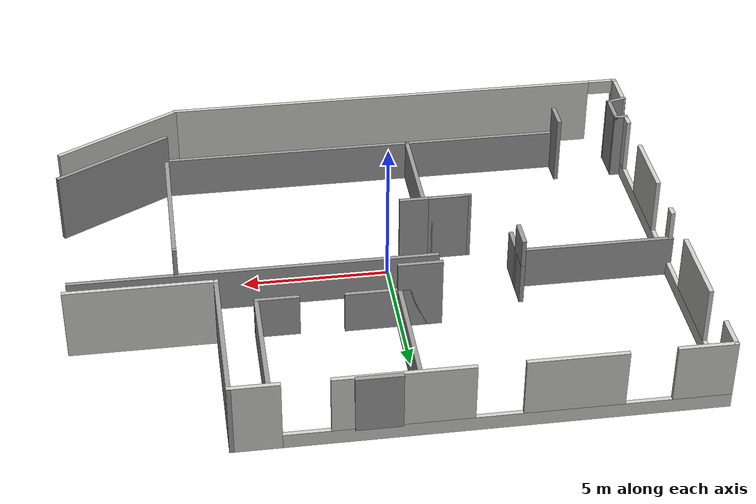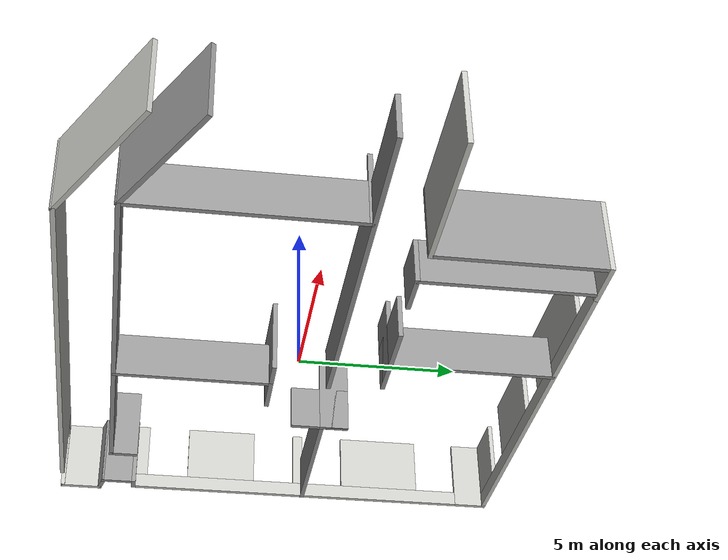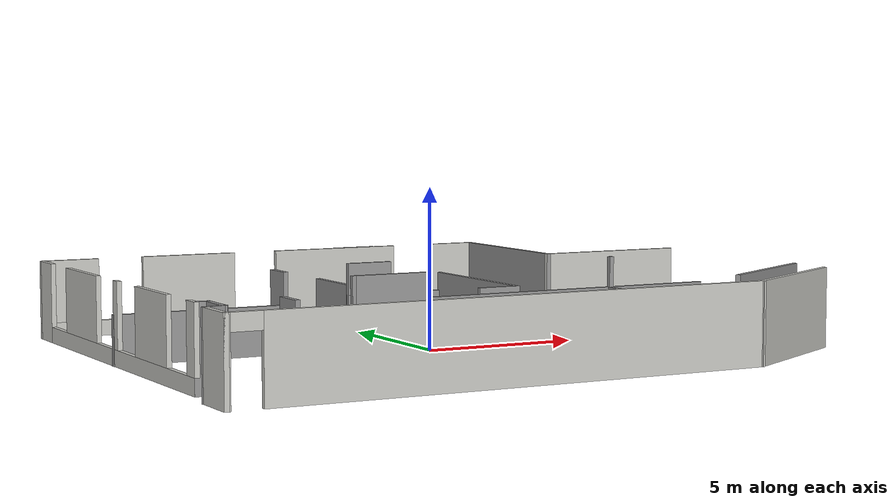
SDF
<?xml version='1.0'?>
<sdf version='1.6'>
  <model name='myoffice2f'>
    <pose frame=''>0.632019 0.350636 0 0 -0 0</pose>
    <link name='Wall_0'>
      <collision name='Wall_0_Collision'>
        <geometry>
          <box>
            <size>5 0.15 2.5</size>
          </box>
        </geometry>
        <pose frame=''>0 0 1.25 0 -0 0</pose>
      </collision>
      <visual name='Wall_0_Visual'>
        <pose frame=''>0 0 1.25 0 -0 0</pose>
        <geometry>
          <box>
            <size>5 0.15 2.5</size>
          </box>
        </geometry>
        <material>
          <script>
            <uri>file://media/materials/scripts/gazebo.material</uri>
            <name>Gazebo/CeilingTiled</name>
          </script>
          <ambient>1 1 1 1</ambient>
        </material>
        <meta>
          <layer>0</layer>
        </meta>
      </visual>
      <pose frame=''>7.82859 2.64137 0 0 -0 3.14159</pose>
    </link>
    <link name='Wall_1'>
      <collision name='Wall_1_Collision'>
        <geometry>
          <box>
            <size>5.5 0.15 2.5</size>
          </box>
        </geometry>
        <pose frame=''>0 0 1.25 0 -0 0</pose>
      </collision>
      <visual name='Wall_1_Visual'>
        <pose frame=''>0 0 1.25 0 -0 0</pose>
        <geometry>
          <box>
            <size>5.5 0.15 2.5</size>
          </box>
        </geometry>
        <material>
          <script>
            <uri>file://media/materials/scripts/gazebo.material</uri>
            <name>Gazebo/Grey</name>
          </script>
          <ambient>1 1 1 1</ambient>
        </material>
        <meta>
          <layer>0</layer>
        </meta>
      </visual>
      <pose frame=''>5.40359 5.31637 0 0 -0 1.5708</pose>
    </link>
    <link name='Wall_11'>
      <collision name='Wall_11_Collision'>
        <geometry>
          <box>
            <size>4.5 0.15 2.5</size>
          </box>
        </geometry>
        <pose frame=''>0 0 1.25 0 -0 0</pose>
      </collision>
      <visual name='Wall_11_Visual'>
        <pose frame=''>0 0 1.25 0 -0 0</pose>
        <geometry>
          <box>
            <size>4.5 0.15 2.5</size>
          </box>
        </geometry>
        <material>
          <script>
            <uri>file://media/materials/scripts/gazebo.material</uri>
            <name>Gazebo/Grey</name>
          </script>
          <ambient>0.533333 0.541176 0.521569 1</ambient>
        </material>
        <meta>
          <layer>0</layer>
        </meta>
      </visual>
      <pose frame=''>8.5317 -5.12122 0 0 -0 -2.61805</pose>
    </link>
    <link name='Wall_12'>
      <collision name='Wall_12_Collision'>
        <geometry>
          <box>
            <size>14.5 0.15 1.5</size>
          </box>
        </geometry>
        <pose frame=''>0 0 0.75 0 -0 0</pose>
      </collision>
      <visual name='Wall_12_Visual'>
        <pose frame=''>0 0 0.75 0 -0 0</pose>
        <geometry>
          <box>
            <size>14.5 0.15 1.5</size>
          </box>
        </geometry>
        <material>
          <script>
            <uri>file://media/materials/scripts/gazebo.material</uri>
            <name>Gazebo/Grey</name>
          </script>
          <ambient>0.533333 0.541176 0.521569 1</ambient>
        </material>
        <meta>
          <layer>0</layer>
        </meta>
      </visual>
      <pose frame=''>-0.527019 -6.20864 0 0 -0 3.14159</pose>
    </link>
    <link name='Wall_13'>
      <collision name='Wall_13_Collision'>
        <geometry>
          <box>
            <size>1 0.15 2.5</size>
          </box>
        </geometry>
        <pose frame=''>0 0 1.25 0 -0 0</pose>
      </collision>
      <visual name='Wall_13_Visual'>
        <pose frame=''>0 0 1.25 0 -0 0</pose>
        <geometry>
          <box>
            <size>1 0.15 2.5</size>
          </box>
        </geometry>
        <material>
          <script>
            <uri>file://media/materials/scripts/gazebo.material</uri>
            <name>Gazebo/Grey</name>
          </script>
          <ambient>1 1 1 1</ambient>
        </material>
        <meta>
          <layer>0</layer>
        </meta>
      </visual>
      <pose frame=''>-7.70191 -5.78372 0 0 -0 1.57053</pose>
    </link>
    <link name='Wall_15'>
      <collision name='Wall_15_Collision'>
        <geometry>
          <box>
            <size>12.5 0.15 1.5</size>
          </box>
        </geometry>
        <pose frame=''>0 0 0.75 0 -0 0</pose>
      </collision>
      <visual name='Wall_15_Visual'>
        <pose frame=''>0 0 0.75 0 -0 0</pose>
        <geometry>
          <box>
            <size>12.5 0.15 1.5</size>
          </box>
        </geometry>
        <material>
          <script>
            <uri>file://media/materials/scripts/gazebo.material</uri>
            <name>Gazebo/Grey</name>
          </script>
          <ambient>0.533333 0.541176 0.521569 1</ambient>
        </material>
        <meta>
          <layer>0</layer>
        </meta>
      </visual>
      <pose frame=''>4.03798 0.821365 0 0 -0 3.14159</pose>
    </link>
    <link name='Wall_19'>
      <collision name='Wall_19_Collision'>
        <geometry>
          <box>
            <size>7.1 0.15 1.5</size>
          </box>
        </geometry>
        <pose frame=''>0 0 0.75 0 -0 0</pose>
      </collision>
      <visual name='Wall_19_Visual'>
        <pose frame=''>0 0 0.75 0 -0 0</pose>
        <geometry>
          <box>
            <size>7.1 0.15 1.5</size>
          </box>
        </geometry>
        <material>
          <script>
            <uri>file://media/materials/scripts/gazebo.material</uri>
            <name>Gazebo/Grey</name>
          </script>
          <ambient>0.533333 0.541176 0.521569 1</ambient>
        </material>
        <meta>
          <layer>0</layer>
        </meta>
      </visual>
      <pose frame=''>6.64798 -2.73364 0 0 -0 1.5708</pose>
    </link>
    <link name='Wall_2'>
      <pose frame=''>-2.39641 7.99137 0 0 -0 3.14159</pose>
      <visual name='Wall_2_Visual_0'>
        <pose frame=''>-7.0543 0 1.25 0 -0 0</pose>
        <geometry>
          <box>
            <size>1.64141 0.15 2.5</size>
          </box>
        </geometry>
        <material>
          <script>
            <uri>file://media/materials/scripts/gazebo.material</uri>
            <name>Gazebo/CeilingTiled</name>
          </script>
          <ambient>1 1 1 1</ambient>
        </material>
        <meta>
          <layer>0</layer>
        </meta>
      </visual>
      <collision name='Wall_2_Collision_0'>
        <geometry>
          <box>
            <size>1.64141 0.15 2.5</size>
          </box>
        </geometry>
        <pose frame=''>-7.0543 0 1.25 0 -0 0</pose>
      </collision>
      <visual name='Wall_2_Visual_1'>
        <pose frame=''>0.820704 0 0.25 0 -0 0</pose>
        <geometry>
          <box>
            <size>14.1086 0.15 0.5</size>
          </box>
        </geometry>
        <material>
          <script>
            <uri>file://media/materials/scripts/gazebo.material</uri>
            <name>Gazebo/CeilingTiled</name>
          </script>
          <ambient>1 1 1 1</ambient>
        </material>
        <meta>
          <layer>0</layer>
        </meta>
      </visual>
      <collision name='Wall_2_Collision_1'>
        <geometry>
          <box>
            <size>14.1086 0.15 0.5</size>
          </box>
        </geometry>
        <pose frame=''>0.820704 0 0.25 0 -0 0</pose>
      </collision>
      <visual name='Wall_2_Visual_2'>
        <pose frame=''>-2.49734 0 1.5 0 -0 0</pose>
        <geometry>
          <box>
            <size>4.4725 0.15 2</size>
          </box>
        </geometry>
        <material>
          <script>
            <uri>file://media/materials/scripts/gazebo.material</uri>
            <name>Gazebo/CeilingTiled</name>
          </script>
          <ambient>1 1 1 1</ambient>
        </material>
        <meta>
          <layer>0</layer>
        </meta>
      </visual>
      <collision name='Wall_2_Collision_2'>
        <geometry>
          <box>
            <size>4.4725 0.15 2</size>
          </box>
        </geometry>
        <pose frame=''>-2.49734 0 1.5 0 -0 0</pose>
      </collision>
      <visual name='Wall_2_Visual_3'>
        <pose frame=''>2.84966 0 1.5 0 -0 0</pose>
        <geometry>
          <box>
            <size>3.22151 0.15 2</size>
          </box>
        </geometry>
        <material>
          <script>
            <uri>file://media/materials/scripts/gazebo.material</uri>
            <name>Gazebo/CeilingTiled</name>
          </script>
          <ambient>1 1 1 1</ambient>
        </material>
        <meta>
          <layer>0</layer>
        </meta>
      </visual>
      <collision name='Wall_2_Collision_3'>
        <geometry>
          <box>
            <size>3.22151 0.15 2</size>
          </box>
        </geometry>
        <pose frame=''>2.84966 0 1.5 0 -0 0</pose>
      </collision>
      <visual name='Wall_2_Visual_4'>
        <pose frame=''>6.91771 0 1.5 0 -0 0</pose>
        <geometry>
          <box>
            <size>1.91459 0.15 2</size>
          </box>
        </geometry>
        <material>
          <script>
            <uri>file://media/materials/scripts/gazebo.material</uri>
            <name>Gazebo/CeilingTiled</name>
          </script>
          <ambient>1 1 1 1</ambient>
        </material>
        <meta>
          <layer>0</layer>
        </meta>
      </visual>
      <collision name='Wall_2_Collision_4'>
        <geometry>
          <box>
            <size>1.91459 0.15 2</size>
          </box>
        </geometry>
        <pose frame=''>6.91771 0 1.5 0 -0 0</pose>
      </collision>
    </link>
    <link name='Wall_20'>
      <collision name='Wall_20_Collision'>
        <geometry>
          <box>
            <size>0.15 0.15 2.5</size>
          </box>
        </geometry>
        <pose frame=''>0 0 1.25 0 -0 0</pose>
      </collision>
      <visual name='Wall_20_Visual'>
        <pose frame=''>0 0 1.25 0 -0 0</pose>
        <geometry>
          <box>
            <size>0.15 0.15 2.5</size>
          </box>
        </geometry>
        <material>
          <script>
            <uri>file://media/materials/scripts/gazebo.material</uri>
            <name>Gazebo/Grey</name>
          </script>
          <ambient>1 1 1 1</ambient>
        </material>
        <meta>
          <layer>0</layer>
        </meta>
      </visual>
      <pose frame=''>6.64798 0.741364 0 0 -0 0</pose>
    </link>
    <link name='Wall_22'>
      <collision name='Wall_22_Collision'>
        <geometry>
          <box>
            <size>5.5 0.15 1.5</size>
          </box>
        </geometry>
        <pose frame=''>0 0 0.75 0 -0 0</pose>
      </collision>
      <visual name='Wall_22_Visual'>
        <pose frame=''>0 0 0.75 0 -0 0</pose>
        <geometry>
          <box>
            <size>5.5 0.15 1.5</size>
          </box>
        </geometry>
        <material>
          <script>
            <uri>file://media/materials/scripts/gazebo.material</uri>
            <name>Gazebo/Grey</name>
          </script>
          <ambient>0.533333 0.541176 0.521569 1</ambient>
        </material>
        <meta>
          <layer>0</layer>
        </meta>
      </visual>
      <pose frame=''>-7.54202 0.982364 0 0 -0 0</pose>
    </link>
    <link name='Wall_23'>
      <collision name='Wall_23_Collision'>
        <geometry>
          <box>
            <size>1 0.15 2.5</size>
          </box>
        </geometry>
        <pose frame=''>0 0 1.25 0 -0 0</pose>
      </collision>
      <visual name='Wall_23_Visual'>
        <pose frame=''>0 0 1.25 0 -0 0</pose>
        <geometry>
          <box>
            <size>1 0.15 2.5</size>
          </box>
        </geometry>
        <material>
          <script>
            <uri>file://media/materials/scripts/gazebo.material</uri>
            <name>Gazebo/Grey</name>
          </script>
          <ambient>0.533333 0.541176 0.521569 1</ambient>
        </material>
        <meta>
          <layer>0</layer>
        </meta>
      </visual>
      <pose frame=''>-4.86702 1.40736 0 0 -0 1.5708</pose>
    </link>
    <link name='Wall_24'>
      <collision name='Wall_24_Collision'>
        <geometry>
          <box>
            <size>2 0.15 1.5</size>
          </box>
        </geometry>
        <pose frame=''>0 0 0.75 0 -0 0</pose>
      </collision>
      <visual name='Wall_24_Visual'>
        <pose frame=''>0 0 0.75 0 -0 0</pose>
        <geometry>
          <box>
            <size>2 0.15 1.5</size>
          </box>
        </geometry>
        <material>
          <script>
            <uri>file://media/materials/scripts/gazebo.material</uri>
            <name>Gazebo/Grey</name>
          </script>
          <ambient>0.533333 0.541176 0.521569 1</ambient>
        </material>
        <meta>
          <layer>0</layer>
        </meta>
      </visual>
      <pose frame=''>-4.86702 0.907364 0 0 -0 -1.5708</pose>
    </link>
    <link name='Wall_26'>
      <collision name='Wall_26_Collision'>
        <geometry>
          <box>
            <size>5.25 0.15 1.5</size>
          </box>
        </geometry>
        <pose frame=''>0 0 0.75 0 -0 0</pose>
      </collision>
      <visual name='Wall_26_Visual'>
        <pose frame=''>0 0 0.75 0 -0 0</pose>
        <geometry>
          <box>
            <size>5.25 0.15 1.5</size>
          </box>
        </geometry>
        <material>
          <script>
            <uri>file://media/materials/scripts/gazebo.material</uri>
            <name>Gazebo/Grey</name>
          </script>
          <ambient>0.533333 0.541176 0.521569 1</ambient>
        </material>
        <meta>
          <layer>0</layer>
        </meta>
      </visual>
      <pose frame=''>-2.20702 -3.62764 0 0 -0 1.5708</pose>
    </link>
    <link name='Wall_27'>
      <collision name='Wall_27_Collision'>
        <geometry>
          <box>
            <size>1.5 0.15 2.5</size>
          </box>
        </geometry>
        <pose frame=''>0 0 1.25 0 -0 0</pose>
      </collision>
      <visual name='Wall_27_Visual'>
        <pose frame=''>0 0 1.25 0 -0 0</pose>
        <geometry>
          <box>
            <size>1.5 0.15 2.5</size>
          </box>
        </geometry>
        <material>
          <script>
            <uri>file://media/materials/scripts/gazebo.material</uri>
            <name>Gazebo/Grey</name>
          </script>
          <ambient>0.533333 0.541176 0.521569 1</ambient>
        </material>
        <meta>
          <layer>0</layer>
        </meta>
      </visual>
      <pose frame=''>-2.88187 -1.07779 0 0 -0 -3.14136</pose>
    </link>
    <link name='Wall_28'>
      <collision name='Wall_28_Collision'>
        <geometry>
          <box>
            <size>2.5 0.15 2.5</size>
          </box>
        </geometry>
        <pose frame=''>0 0 1.25 0 -0 0</pose>
      </collision>
      <visual name='Wall_28_Visual'>
        <pose frame=''>0 0 1.25 0 -0 0</pose>
        <geometry>
          <box>
            <size>2.5 0.15 2.5</size>
          </box>
        </geometry>
        <material>
          <script>
            <uri>file://media/materials/scripts/gazebo.material</uri>
            <name>Gazebo/Grey</name>
          </script>
          <ambient>0.533333 0.541176 0.521569 1</ambient>
        </material>
        <meta>
          <layer>0</layer>
        </meta>
      </visual>
      <pose frame=''>-2.38172 -1.07794 0 0 -0 0</pose>
    </link>
    <link name='Wall_3'>
      <pose frame=''>-10.1964 1.31637 0 0 -0 -1.5708</pose>
      <visual name='Wall_3_Visual_0'>
        <pose frame=''>-6.15767 0 1.25 0 -0 0</pose>
        <geometry>
          <box>
            <size>1.18465 0.15 2.5</size>
          </box>
        </geometry>
        <material>
          <script>
            <uri>file://media/materials/scripts/gazebo.material</uri>
            <name>Gazebo/CeilingTiled</name>
          </script>
          <ambient>1 1 1 1</ambient>
        </material>
        <meta>
          <layer>0</layer>
        </meta>
      </visual>
      <collision name='Wall_3_Collision_0'>
        <geometry>
          <box>
            <size>1.18465 0.15 2.5</size>
          </box>
        </geometry>
        <pose frame=''>-6.15767 0 1.25 0 -0 0</pose>
      </collision>
      <visual name='Wall_3_Visual_1'>
        <pose frame=''>0.592326 0 0.25 0 -0 0</pose>
        <geometry>
          <box>
            <size>12.3153 0.15 0.5</size>
          </box>
        </geometry>
        <material>
          <script>
            <uri>file://media/materials/scripts/gazebo.material</uri>
            <name>Gazebo/CeilingTiled</name>
          </script>
          <ambient>1 1 1 1</ambient>
        </material>
        <meta>
          <layer>0</layer>
        </meta>
      </visual>
      <collision name='Wall_3_Collision_1'>
        <geometry>
          <box>
            <size>12.3153 0.15 0.5</size>
          </box>
        </geometry>
        <pose frame=''>0.592326 0 0.25 0 -0 0</pose>
      </collision>
      <visual name='Wall_3_Visual_2'>
        <pose frame=''>-2.61601 0 1.5 0 -0 0</pose>
        <geometry>
          <box>
            <size>2.89867 0.15 2</size>
          </box>
        </geometry>
        <material>
          <script>
            <uri>file://media/materials/scripts/gazebo.material</uri>
            <name>Gazebo/CeilingTiled</name>
          </script>
          <ambient>1 1 1 1</ambient>
        </material>
        <meta>
          <layer>0</layer>
        </meta>
      </visual>
      <collision name='Wall_3_Collision_2'>
        <geometry>
          <box>
            <size>2.89867 0.15 2</size>
          </box>
        </geometry>
        <pose frame=''>-2.61601 0 1.5 0 -0 0</pose>
      </collision>
      <visual name='Wall_3_Visual_3'>
        <pose frame=''>0.511478 0 1.5 0 -0 0</pose>
        <geometry>
          <box>
            <size>0.356318 0.15 2</size>
          </box>
        </geometry>
        <material>
          <script>
            <uri>file://media/materials/scripts/gazebo.material</uri>
            <name>Gazebo/CeilingTiled</name>
          </script>
          <ambient>1 1 1 1</ambient>
        </material>
        <meta>
          <layer>0</layer>
        </meta>
      </visual>
      <collision name='Wall_3_Collision_3'>
        <geometry>
          <box>
            <size>0.356318 0.15 2</size>
          </box>
        </geometry>
        <pose frame=''>0.511478 0 1.5 0 -0 0</pose>
      </collision>
      <visual name='Wall_3_Visual_4'>
        <pose frame=''>3.4372 0 1.5 0 -0 0</pose>
        <geometry>
          <box>
            <size>2.49512 0.15 2</size>
          </box>
        </geometry>
        <material>
          <script>
            <uri>file://media/materials/scripts/gazebo.material</uri>
            <name>Gazebo/CeilingTiled</name>
          </script>
          <ambient>1 1 1 1</ambient>
        </material>
        <meta>
          <layer>0</layer>
        </meta>
      </visual>
      <collision name='Wall_3_Collision_4'>
        <geometry>
          <box>
            <size>2.49512 0.15 2</size>
          </box>
        </geometry>
        <pose frame=''>3.4372 0 1.5 0 -0 0</pose>
      </collision>
      <visual name='Wall_3_Visual_5'>
        <pose frame=''>6.46738 0 1.5 0 -0 0</pose>
        <geometry>
          <box>
            <size>0.565244 0.15 2</size>
          </box>
        </geometry>
        <material>
          <script>
            <uri>file://media/materials/scripts/gazebo.material</uri>
            <name>Gazebo/CeilingTiled</name>
          </script>
          <ambient>1 1 1 1</ambient>
        </material>
        <meta>
          <layer>0</layer>
        </meta>
      </visual>
      <collision name='Wall_3_Collision_5'>
        <geometry>
          <box>
            <size>0.565244 0.15 2</size>
          </box>
        </geometry>
        <pose frame=''>6.46738 0 1.5 0 -0 0</pose>
      </collision>
    </link>
    <link name='Wall_30'>
      <collision name='Wall_30_Collision'>
        <geometry>
          <box>
            <size>5.5 0.15 1.5</size>
          </box>
        </geometry>
        <pose frame=''>0 0 0.75 0 -0 0</pose>
      </collision>
      <visual name='Wall_30_Visual'>
        <pose frame=''>0 0 0.75 0 -0 0</pose>
        <geometry>
          <box>
            <size>5.5 0.15 1.5</size>
          </box>
        </geometry>
        <material>
          <script>
            <uri>file://media/materials/scripts/gazebo.material</uri>
            <name>Gazebo/Grey</name>
          </script>
          <ambient>0.533333 0.541176 0.521569 1</ambient>
        </material>
        <meta>
          <layer>0</layer>
        </meta>
      </visual>
      <pose frame=''>-0.588019 5.26637 0 0 -0 -1.5708</pose>
    </link>
    <link name='Wall_31'>
      <collision name='Wall_31_Collision'>
        <geometry>
          <box>
            <size>1.5 0.15 2.5</size>
          </box>
        </geometry>
        <pose frame=''>0 0 1.25 0 -0 0</pose>
      </collision>
      <visual name='Wall_31_Visual'>
        <pose frame=''>0 0 1.25 0 -0 0</pose>
        <geometry>
          <box>
            <size>1.5 0.15 2.5</size>
          </box>
        </geometry>
        <material>
          <script>
            <uri>file://media/materials/scripts/gazebo.material</uri>
            <name>Gazebo/Grey</name>
          </script>
          <ambient>0.533333 0.541176 0.521569 1</ambient>
        </material>
        <meta>
          <layer>0</layer>
        </meta>
      </visual>
      <pose frame=''>-1.26302 2.59136 0 0 -0 3.14159</pose>
    </link>
    <link name='Wall_32'>
      <collision name='Wall_32_Collision'>
        <geometry>
          <box>
            <size>3.25 0.15 1.5</size>
          </box>
        </geometry>
        <pose frame=''>0 0 0.75 0 -0 0</pose>
      </collision>
      <visual name='Wall_32_Visual'>
        <pose frame=''>0 0 0.75 0 -0 0</pose>
        <geometry>
          <box>
            <size>3.25 0.15 1.5</size>
          </box>
        </geometry>
        <material>
          <script>
            <uri>file://media/materials/scripts/gazebo.material</uri>
            <name>Gazebo/Grey</name>
          </script>
          <ambient>0.533333 0.541176 0.521569 1</ambient>
        </material>
        <meta>
          <layer>0</layer>
        </meta>
      </visual>
      <pose frame=''>-0.388019 2.59136 0 0 -0 0</pose>
    </link>
    <link name='Wall_34'>
      <collision name='Wall_34_Collision'>
        <geometry>
          <box>
            <size>5.5 0.15 1.5</size>
          </box>
        </geometry>
        <pose frame=''>0 0 0.75 0 -0 0</pose>
      </collision>
      <visual name='Wall_34_Visual'>
        <pose frame=''>0 0 0.75 0 -0 0</pose>
        <geometry>
          <box>
            <size>5.5 0.15 1.5</size>
          </box>
        </geometry>
        <material>
          <script>
            <uri>file://media/materials/scripts/gazebo.material</uri>
            <name>Gazebo/Grey</name>
          </script>
          <ambient>0.533333 0.541176 0.521569 1</ambient>
        </material>
        <meta>
          <layer>0</layer>
        </meta>
      </visual>
      <pose frame=''>4.13598 5.19236 0 0 -0 -1.5708</pose>
    </link>
    <link name='Wall_35'>
      <collision name='Wall_35_Collision'>
        <geometry>
          <box>
            <size>1.5 0.15 1.5</size>
          </box>
        </geometry>
        <pose frame=''>0 0 0.75 0 -0 0</pose>
      </collision>
      <visual name='Wall_35_Visual'>
        <pose frame=''>0 0 0.75 0 -0 0</pose>
        <geometry>
          <box>
            <size>1.5 0.15 1.5</size>
          </box>
        </geometry>
        <material>
          <script>
            <uri>file://media/materials/scripts/gazebo.material</uri>
            <name>Gazebo/Grey</name>
          </script>
          <ambient>0.533333 0.541176 0.521569 1</ambient>
        </material>
        <meta>
          <layer>0</layer>
        </meta>
      </visual>
      <pose frame=''>3.46098 2.51736 0 0 -0 3.14159</pose>
    </link>
    <link name='Wall_4'>
      <collision name='Wall_4_Collision'>
        <geometry>
          <box>
            <size>0.5 0.15 2.5</size>
          </box>
        </geometry>
        <pose frame=''>0 0 1.25 0 -0 0</pose>
      </collision>
      <visual name='Wall_4_Visual'>
        <pose frame=''>0 0 1.25 0 -0 0</pose>
        <geometry>
          <box>
            <size>0.5 0.15 2.5</size>
          </box>
        </geometry>
        <material>
          <script>
            <uri>file://media/materials/scripts/gazebo.material</uri>
            <name>Gazebo/Grey</name>
          </script>
          <ambient>1 1 1 1</ambient>
        </material>
        <meta>
          <layer>0</layer>
        </meta>
      </visual>
      <pose frame=''>-10.0214 -5.35863 0 0 -0 0</pose>
    </link>
    <link name='Wall_5'>
      <collision name='Wall_5_Collision'>
        <geometry>
          <box>
            <size>1.25 0.15 2.5</size>
          </box>
        </geometry>
        <pose frame=''>0 0 1.25 0 -0 0</pose>
      </collision>
      <visual name='Wall_5_Visual'>
        <pose frame=''>0 0 1.25 0 -0 0</pose>
        <geometry>
          <box>
            <size>1.25 0.15 2.5</size>
          </box>
        </geometry>
        <material>
          <script>
            <uri>file://media/materials/scripts/gazebo.material</uri>
            <name>Gazebo/Grey</name>
          </script>
          <ambient>1 1 1 1</ambient>
        </material>
        <meta>
          <layer>0</layer>
        </meta>
      </visual>
      <pose frame=''>-9.84641 -5.90863 0 0 -0 -1.5708</pose>
    </link>
    <link name='Wall_6'>
      <collision name='Wall_6_Collision'>
        <geometry>
          <box>
            <size>0.75 0.15 2.5</size>
          </box>
        </geometry>
        <pose frame=''>0 0 1.25 0 -0 0</pose>
      </collision>
      <visual name='Wall_6_Visual'>
        <pose frame=''>0 0 1.25 0 -0 0</pose>
        <geometry>
          <box>
            <size>0.75 0.15 2.5</size>
          </box>
        </geometry>
        <material>
          <script>
            <uri>file://media/materials/scripts/gazebo.material</uri>
            <name>Gazebo/Grey</name>
          </script>
          <ambient>1 1 1 1</ambient>
        </material>
        <meta>
          <layer>0</layer>
        </meta>
      </visual>
      <pose frame=''>-10.1362 -6.53627 0 0 -0 -2.87979</pose>
    </link>
    <link name='Wall_7'>
      <collision name='Wall_7_Collision'>
        <geometry>
          <box>
            <size>1.5 0.15 2.5</size>
          </box>
        </geometry>
        <pose frame=''>0 0 1.25 0 -0 0</pose>
      </collision>
      <visual name='Wall_7_Visual'>
        <pose frame=''>0 0 1.25 0 -0 0</pose>
        <geometry>
          <box>
            <size>1.5 0.15 2.5</size>
          </box>
        </geometry>
        <material>
          <script>
            <uri>file://media/materials/scripts/gazebo.material</uri>
            <name>Gazebo/CeilingTiled</name>
          </script>
          <ambient>1 1 1 1</ambient>
        </material>
        <meta>
          <layer>0</layer>
        </meta>
      </visual>
      <pose frame=''>-10.426 -7.28892 0 0 -0 -1.5708</pose>
    </link>
    <link name='Wall_8'>
      <pose frame=''>-2.12596 -7.96392 0 0 -0 0</pose>
      <visual name='Wall_8_Visual_0'>
        <pose frame=''>-8.28286 0 1.25 0 -0 0</pose>
        <geometry>
          <box>
            <size>0.184276 0.15 2.5</size>
          </box>
        </geometry>
        <material>
          <script>
            <uri>file://media/materials/scripts/gazebo.material</uri>
            <name>Gazebo/CeilingTiled</name>
          </script>
          <ambient>1 1 1 1</ambient>
        </material>
        <meta>
          <layer>0</layer>
        </meta>
      </visual>
      <collision name='Wall_8_Collision_0'>
        <geometry>
          <box>
            <size>0.184276 0.15 2.5</size>
          </box>
        </geometry>
        <pose frame=''>-8.28286 0 1.25 0 -0 0</pose>
      </collision>
      <visual name='Wall_8_Visual_1'>
        <pose frame=''>0.542138 0 1.25 0 -0 0</pose>
        <geometry>
          <box>
            <size>15.6657 0.15 2.5</size>
          </box>
        </geometry>
        <material>
          <script>
            <uri>file://media/materials/scripts/gazebo.material</uri>
            <name>Gazebo/CeilingTiled</name>
          </script>
          <ambient>1 1 1 1</ambient>
        </material>
        <meta>
          <layer>0</layer>
        </meta>
      </visual>
      <collision name='Wall_8_Collision_1'>
        <geometry>
          <box>
            <size>15.6657 0.15 2.5</size>
          </box>
        </geometry>
        <pose frame=''>0.542138 0 1.25 0 -0 0</pose>
      </collision>
      <visual name='Wall_8_Visual_2'>
        <pose frame=''>-7.74072 0 2.25 0 -0 0</pose>
        <geometry>
          <box>
            <size>0.9 0.15 0.5</size>
          </box>
        </geometry>
        <material>
          <script>
            <uri>file://media/materials/scripts/gazebo.material</uri>
            <name>Gazebo/CeilingTiled</name>
          </script>
          <ambient>1 1 1 1</ambient>
        </material>
        <meta>
          <layer>0</layer>
        </meta>
      </visual>
      <collision name='Wall_8_Collision_2'>
        <geometry>
          <box>
            <size>0.9 0.15 0.5</size>
          </box>
        </geometry>
        <pose frame=''>-7.74072 0 2.25 0 -0 0</pose>
      </collision>
    </link>
    <link name='Wall_9'>
      <collision name='Wall_9_Collision'>
        <geometry>
          <box>
            <size>5 0.15 2.5</size>
          </box>
        </geometry>
        <pose frame=''>0 0 1.25 0 -0 0</pose>
      </collision>
      <visual name='Wall_9_Visual'>
        <pose frame=''>0 0 1.25 0 -0 0</pose>
        <geometry>
          <box>
            <size>5 0.15 2.5</size>
          </box>
        </geometry>
        <material>
          <script>
            <uri>file://media/materials/scripts/gazebo.material</uri>
            <name>Gazebo/CeilingTiled</name>
          </script>
          <ambient>1 1 1 1</ambient>
        </material>
        <meta>
          <layer>0</layer>
        </meta>
      </visual>
      <pose frame=''>8.27415 -6.75142 0 0 -0 0.523599</pose>
    </link>
    <link name='Window_6'>
      <collision name='Window_6_Collision'>
        <geometry>
          <box>
            <size>1.5 0.17 2</size>
          </box>
        </geometry>
        <pose frame=''>0 0 1 0 -0 0</pose>
      </collision>
      <visual name='Window_6_Visual'>
        <pose frame=''>0 0 1 0 -0 0</pose>
        <geometry>
          <box>
            <size>1.5 0.17 2</size>
          </box>
        </geometry>
        <material>
          <script>
            <uri>file://media/materials/scripts/gazebo.material</uri>
            <name>Gazebo/Grey</name>
          </script>
        </material>
      </visual>
      <pose frame=''>0.867675 8.06875 0.5 0 -0 0</pose>
    </link>
    <static>1</static>
  </model>
</sdf>
